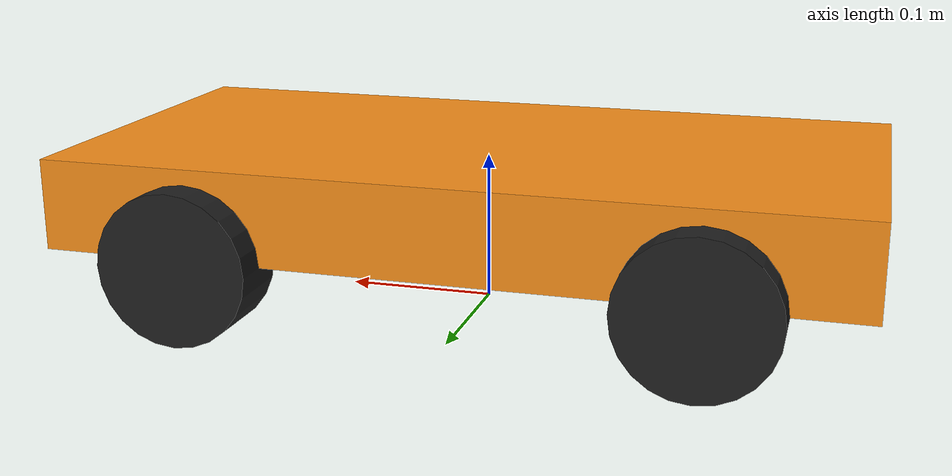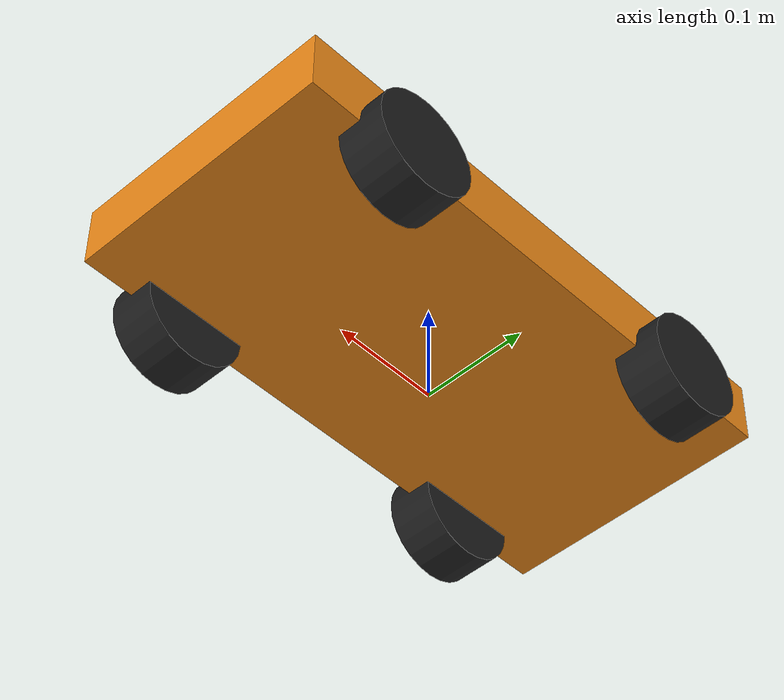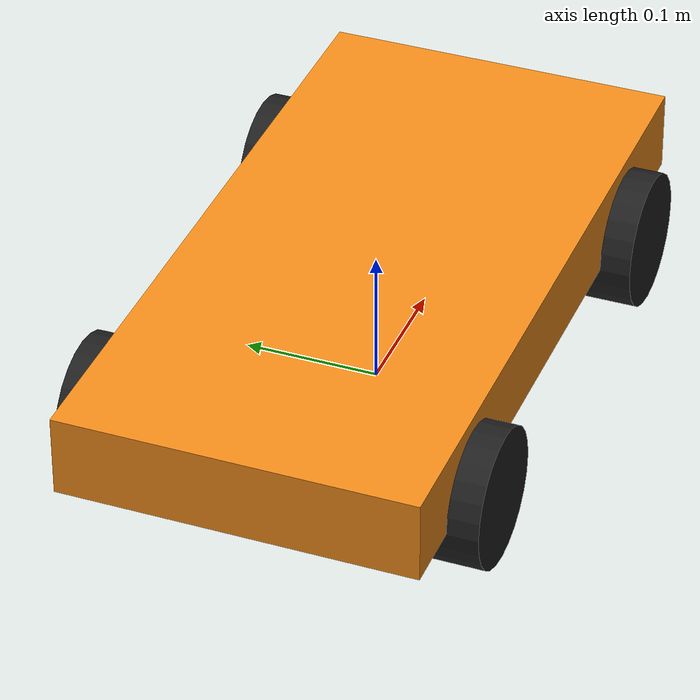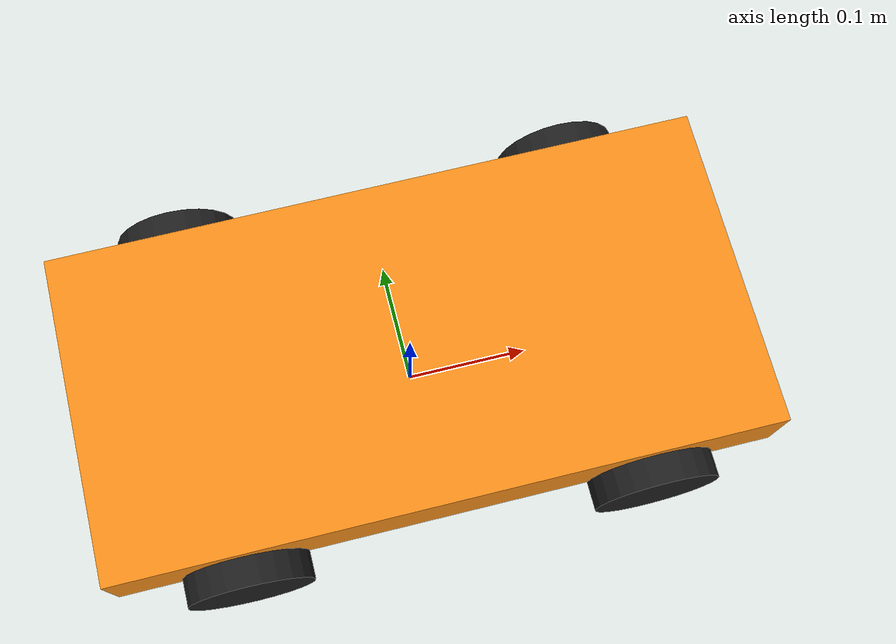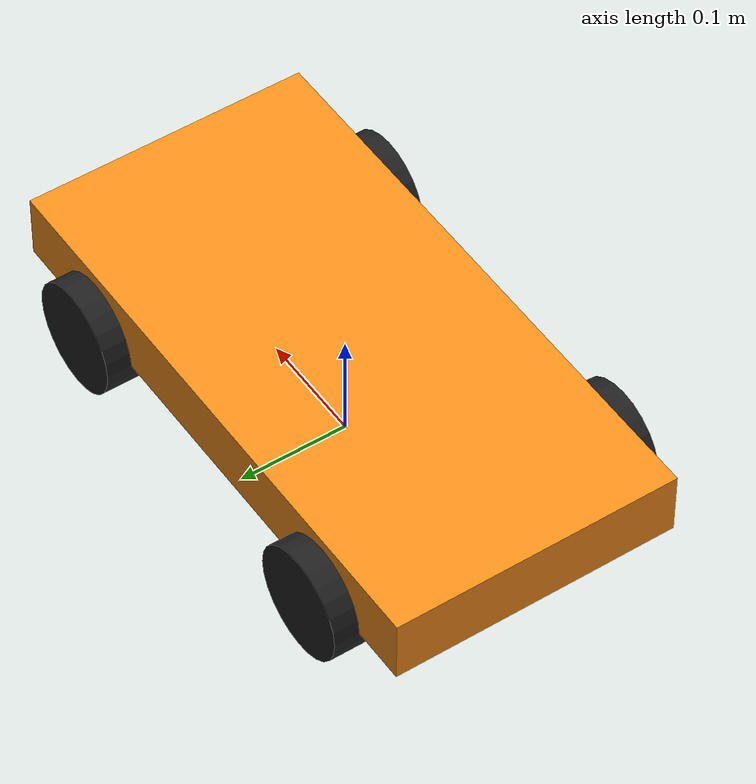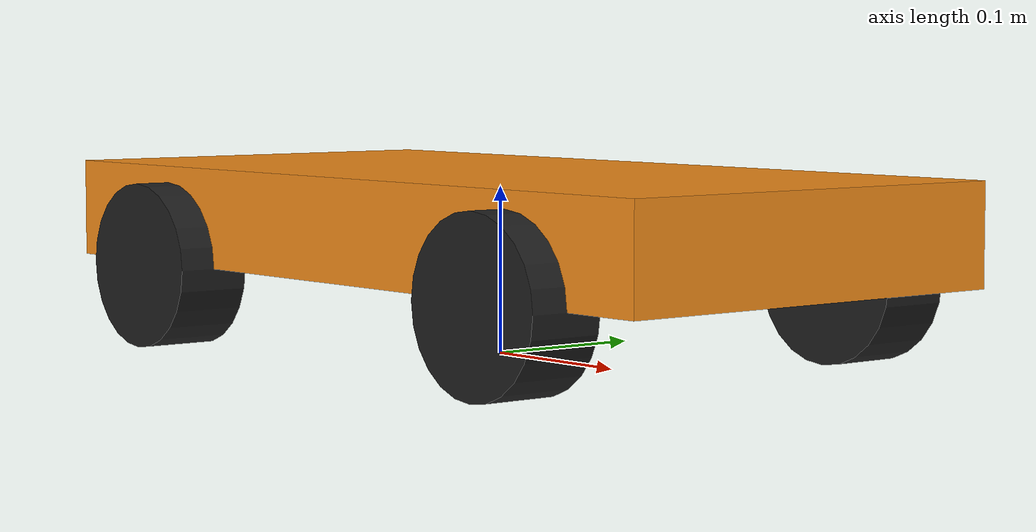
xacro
<?xml version="1.0"?>
<!-- 4 Wheel Robot with front steering and rear drive -->
<robot xmlns:xacro="http://www.ros.org/wiki/xacro" name="mecanumwheelbot_robot">
  <xacro:arg name="prefix" default="" />

  <xacro:include filename="$(find ros2_control_demo_description)/mecanumwheelbot/urdf/mecanumwheelbot_description.urdf.xacro" />

  <!-- Import Rviz colors -->
  <xacro:include filename="$(find ros2_control_demo_description)/mecanumwheelbot/urdf/mecanumwheelbot.materials.xacro" />

  <!-- Import mecanumwheelbot ros2_control description -->
  <xacro:include filename="$(find ros2_control_demo_example_17)/ros2_control/mecanumwheelbot.ros2_control.xacro" />

  <xacro:mecanumwheelbot prefix="$(arg prefix)" />

  <xacro:mecanumwheelbot_ros2_control
    name="mecanumwheelbot" prefix="$(arg prefix)" />

</robot>

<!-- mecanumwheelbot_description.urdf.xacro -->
<robot xmlns:xacro="http://www.ros.org/wiki/xacro">

  <xacro:macro name="mecanumwheelbot" params="prefix">

  <!-- Constants for robot dimensions -->
  <xacro:property name="PI" value="3.1415926535897931"/>
  <xacro:property name="base_mass" value="4.0" /> <!-- arbitrary value for base mass -->
  <xacro:property name="base_width" value="0.260" />
  <xacro:property name="base_length" value="0.525" />
  <xacro:property name="base_height" value="0.060" />
  <xacro:property name="wheelbase" value="0.325" />
  <xacro:property name="wheel_mass" value="0.34055" /> <!-- arbitrary value for wheel mass -->
  <xacro:property name="wheel_len" value="0.045" />
  <xacro:property name="wheel_radius" value="0.05" />

  <!-- Base Link -->
  <link name="${prefix}base_link" />

  <!-- Chassis -->

  <link name="${prefix}chassis_link">
    <collision>
      <origin xyz="0 0 0" rpy="0 0 0"/>
      <geometry>
        <box size="${base_length} ${base_width} ${base_height}"/>
      </geometry>
    </collision>

    <visual>
      <origin xyz="0 0 0" rpy="0 0 0"/>
      <geometry>
        <box size="${base_length} ${base_width} ${base_height}"/>
      </geometry>
      <material name="orange"/>
    </visual>

    <inertial>
      <origin xyz="0 0 0" rpy="0 0 0"/>
      <mass value="${base_mass}"/>
        <inertia
          ixx="0.000270" ixy="0.0" ixz="0.0"
          iyy="0.000270" iyz="0.0"
          izz="0.000426"/>
      </inertial>
    </link>

    <joint name="${prefix}chassis_joint" type="fixed">
      <parent link="${prefix}base_link"/>
      <child link="${prefix}chassis_link"/>
      <origin xyz="0 0 ${base_height/2 + wheel_radius}" rpy="0 0 0"/>
      <axis xyz="0 0 1"/>
      <dynamics damping="0.2"/>
    </joint>

    <!-- rear wheels -->

    <!-- virtual rear wheel -->

    <!-- rear right wheel -->

    <link name="${prefix}rear_right_wheel">
      <collision>
        <origin xyz="0 0 0" rpy="${PI/2} 0 ${PI/2}"/>
        <geometry>
          <cylinder length="${wheel_len}" radius="${wheel_radius}"/>
        </geometry>
      </collision>

      <visual>
        <origin xyz="0 0 0" rpy="${PI/2} 0 ${PI/2}"/>
        <geometry>
          <cylinder length="${wheel_len}" radius="${wheel_radius}"/>
        </geometry>
        <material name="black"/>
      </visual>

      <inertial>
        <origin xyz="0 0 0" rpy="${PI/2} 0 ${PI/2}"/>
        <mass value="${wheel_mass}"/>
        <inertia
          ixx="0.000270" ixy="0.0" ixz="0.0"
          iyy="0.000270" iyz="0.0"
          izz="0.000426"/>
      </inertial>

    </link>

    <joint name="${prefix}rear_right_wheel_joint" type="continuous">
      <parent link="${prefix}chassis_link"/>
      <child link="${prefix}rear_right_wheel"/>
      <origin xyz="-${wheelbase/2} ${base_width/2} -${base_height/2}" rpy="0 0 ${PI/2}"/>
      <axis xyz="1 0 0"/>
      <limit effort="100.0" velocity="100.0"/>
      <dynamics damping="0.2"/>
    </joint>

    <!-- rear left wheel -->
    <link name="${prefix}rear_left_wheel">
        <collision>
          <origin xyz="0 0 0" rpy="${PI/2} 0 ${PI/2}"/>
          <geometry>
            <cylinder length="${wheel_len}" radius="${wheel_radius}"/>
          </geometry>
        </collision>

        <visual>
          <origin xyz="0 0 0" rpy="${PI/2} 0 ${PI/2}"/>
          <geometry>
            <cylinder length="${wheel_len}" radius="${wheel_radius}"/>
          </geometry>
          <material name="black"/>
        </visual>

        <inertial>
          <origin xyz="0 0 0" rpy="${PI/2} 0 ${PI/2}"/>
          <mass value="${wheel_mass}"/>
          <inertia
            ixx="0.000270" ixy="0.0" ixz="0.0"
            iyy="0.000270" iyz="0.0"
            izz="0.000426"/>
        </inertial>

    </link>

    <joint name="${prefix}rear_left_wheel_joint" type="continuous">
      <parent link="${prefix}chassis_link" />
      <child link="${prefix}rear_left_wheel" />
      <origin xyz="-${wheelbase/2} -${base_width/2} -${base_height/2}" rpy="0 0 ${PI/2}"/>
      <axis xyz="1 0 0"/>
      <limit effort="100.0" velocity="100.0"/>
      <dynamics damping="0.2"/>
    </joint>

    <!-- front wheels -->

    <!-- virtual front wheel -->

    <!-- front right wheel -->

    <link name="${prefix}front_right_wheel">

      <collision>
        <origin xyz="0 0 0" rpy="${PI/2} 0 ${PI/2}"/>
        <geometry>
          <cylinder length="${wheel_len}" radius="${wheel_radius}"/>
        </geometry>
      </collision>

      <visual>
        <origin xyz="0 0 0" rpy="${PI/2} 0 ${PI/2}"/>
        <geometry>
          <cylinder length="${wheel_len}" radius="${wheel_radius}"/>
        </geometry>
        <material name="black"/>
      </visual>

      <inertial>
        <origin xyz="0 0 0" rpy="${PI/2} 0 ${PI/2}"/>
        <mass value="${wheel_mass}"/>
        <inertia
          ixx="0.000270" ixy="0.0" ixz="0.0"
          iyy="0.000270" iyz="0.0"
          izz="0.000426"/>
      </inertial>
    </link>

    <joint name="${prefix}front_right_wheel_joint" type="revolute">
      <parent link="${prefix}chassis_link" />
      <child link="${prefix}front_right_wheel" />
      <origin xyz="${wheelbase/2} ${base_width/2} -${base_height/2}" rpy="0 0 ${PI/2}"/>
      <axis xyz="0 0 1"/>
      <limit lower="-0.4" upper="0.4" effort="100.0" velocity="0.0"/>
      <dynamics damping="0.2"/>
    </joint>

    <!-- front left steering -->

    <link name="${prefix}front_left_wheel">
      <collision>
        <origin xyz="0 0 0" rpy="${PI/2} 0 ${PI/2}"/>
        <geometry>
          <cylinder length="${wheel_len}" radius="${wheel_radius}"/>
        </geometry>
      </collision>

      <visual>
        <origin xyz="0 0 0" rpy="${PI/2} 0 ${PI/2}"/>
        <geometry>
          <cylinder length="${wheel_len}" radius="${wheel_radius}"/>
        </geometry>
        <material name="black"/>
      </visual>

      <inertial>
        <origin xyz="0 0 0" rpy="${PI/2} 0 ${PI/2}"/>
        <mass value="${wheel_mass}"/>
        <inertia
          ixx="0.000270" ixy="0.0" ixz="0.0"
          iyy="0.000270" iyz="0.0"
          izz="0.000426"/>
      </inertial>

    </link>

    <joint name="${prefix}front_left_wheel_joint" type="revolute">
      <parent link="${prefix}chassis_link" />
      <child link="${prefix}front_left_wheel" />
      <origin xyz="${wheelbase/2} -${base_width/2} -${base_height/2}" rpy="0 0 ${PI/2}"/>
      <axis xyz="0 0 1"/>
      <limit lower="-0.4" upper="0.4" effort="100.0" velocity="0.0"/>
      <dynamics damping="0.2"/>
    </joint>

  </xacro:macro>

</robot>
